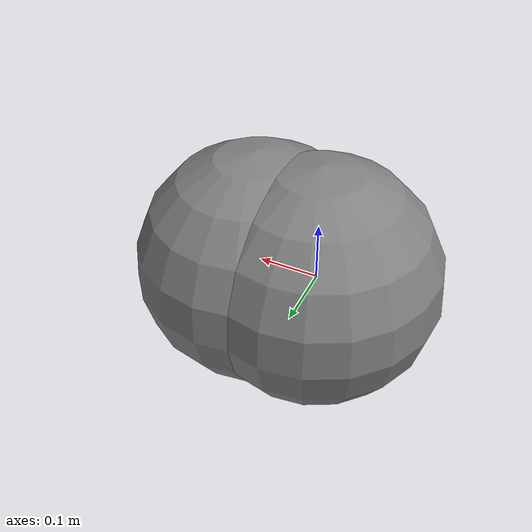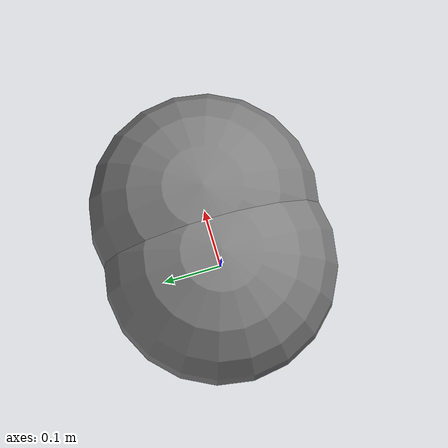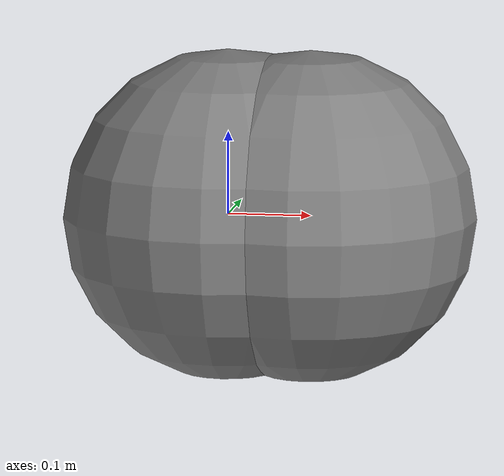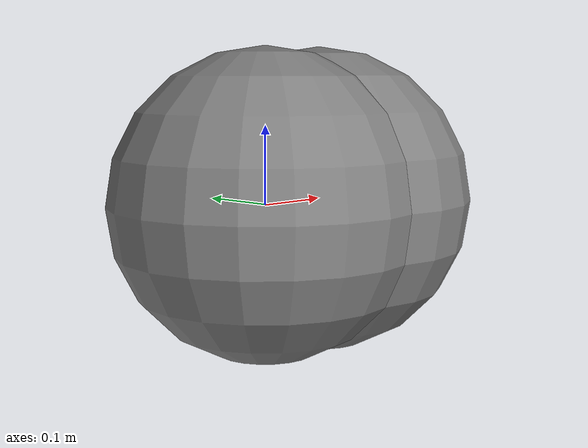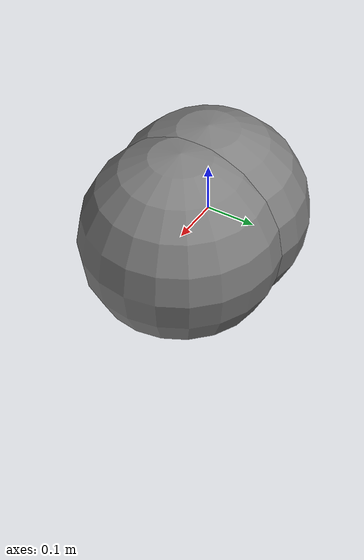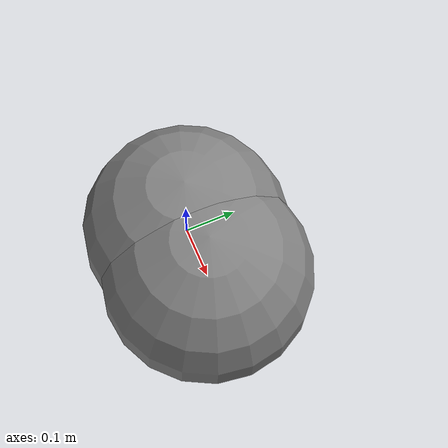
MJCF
<mujoco model="stacked_joint_adjacency">
  <option gravity="0 0 0"/>
  <worldbody>
    <body name="parent">
      <freejoint/>
      <geom name="parent_geom" type="sphere" size="0.2"/>
      <body name="stacked_child" pos="0.1 0 0">
        <joint name="child_hinge_x" type="hinge" axis="1 0 0"/>
        <joint name="child_hinge_y" type="hinge" axis="0 1 0"/>
        <geom name="child_geom" type="sphere" size="0.2"/>
      </body>
    </body>
  </worldbody>
</mujoco>
